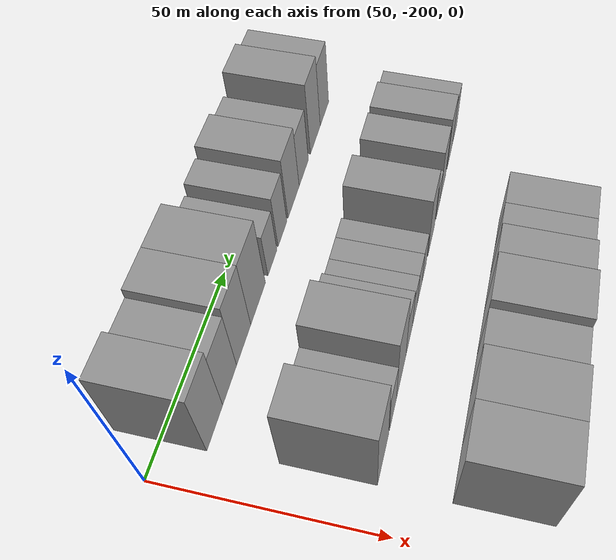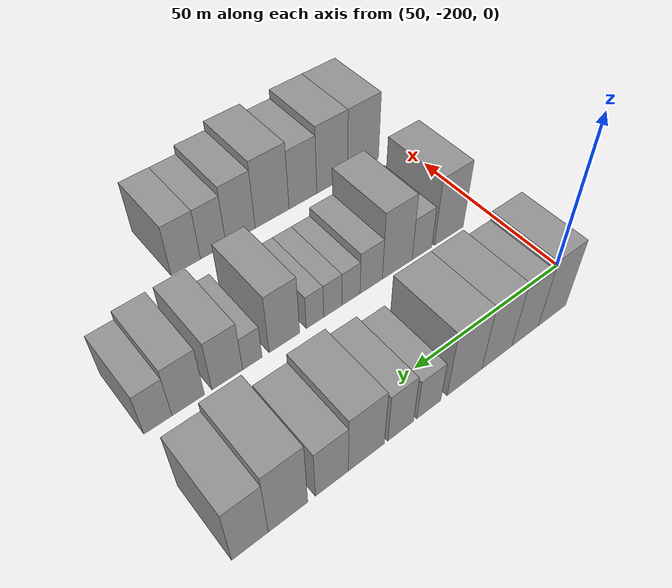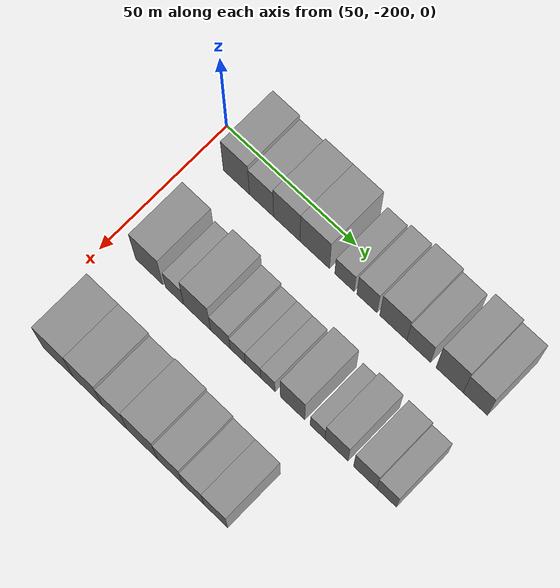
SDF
<sdf version="1.6">
 <world name="default">
  <model name="building_18">
   <static>1</static>
   <pose>50.0000 -186.4516 0 0.000000 0.000000 0.000000</pose>
   <link name="link">
    <pose>0 0 12.00 0 0 0</pose>
    <collision name="collision"><geometry><box><size>20.0000 10.1040 24.0000</size></box></geometry></collision>
    <visual name="visual">
     <cast_shadows>0</cast_shadows>
     <geometry><box><size>20.0000 10.1040 24.0000</size></box></geometry>
     <material>
      <script>
       <uri>model://grey_wall/materials/scripts</uri>
       <uri>model://grey_wall/materials/textures</uri>
       <name>vrc/grey_wall</name>
      </script>
     </material>
    </visual>
   </link>
  </model>
  <model name="building_19">
   <static>1</static>
   <pose>50.0000 -176.7183 0 0.000000 0.000000 0.000000</pose>
   <link name="link">
    <pose>0 0 10.50 0 0 0</pose>
    <collision name="collision"><geometry><box><size>20.0000 9.3626 21.0000</size></box></geometry></collision>
    <visual name="visual">
     <cast_shadows>0</cast_shadows>
     <geometry><box><size>20.0000 9.3626 21.0000</size></box></geometry>
     <material>
      <script>
       <uri>model://grey_wall/materials/scripts</uri>
       <uri>model://grey_wall/materials/textures</uri>
       <name>vrc/grey_wall</name>
      </script>
     </material>
    </visual>
   </link>
  </model>
  <model name="building_20">
   <static>1</static>
   <pose>50.0000 -166.9501 0 0.000000 0.000000 0.000000</pose>
   <link name="link">
    <pose>0 0 12.00 0 0 0</pose>
    <collision name="collision"><geometry><box><size>20.0000 10.1739 24.0000</size></box></geometry></collision>
    <visual name="visual">
     <cast_shadows>0</cast_shadows>
     <geometry><box><size>20.0000 10.1739 24.0000</size></box></geometry>
     <material>
      <script>
       <uri>model://grey_wall/materials/scripts</uri>
       <uri>model://grey_wall/materials/textures</uri>
       <name>vrc/grey_wall</name>
      </script>
     </material>
    </visual>
   </link>
  </model>
  <model name="building_21">
   <static>1</static>
   <pose>50.0000 -156.2615 0 0.000000 0.000000 0.000000</pose>
   <link name="link">
    <pose>0 0 12.00 0 0 0</pose>
    <collision name="collision"><geometry><box><size>20.0000 11.2033 24.0000</size></box></geometry></collision>
    <visual name="visual">
     <cast_shadows>0</cast_shadows>
     <geometry><box><size>20.0000 11.2033 24.0000</size></box></geometry>
     <material>
      <script>
       <uri>model://grey_wall/materials/scripts</uri>
       <uri>model://grey_wall/materials/textures</uri>
       <name>vrc/grey_wall</name>
      </script>
     </material>
    </visual>
   </link>
  </model>
  <model name="building_22">
   <static>1</static>
   <pose>50.0000 -144.9928 0 0.000000 0.000000 0.000000</pose>
   <link name="link">
    <pose>0 0 7.50 0 0 0</pose>
    <collision name="collision"><geometry><box><size>20.0000 7.3341 15.0000</size></box></geometry></collision>
    <visual name="visual">
     <cast_shadows>0</cast_shadows>
     <geometry><box><size>20.0000 7.3341 15.0000</size></box></geometry>
     <material>
      <script>
       <uri>model://grey_wall/materials/scripts</uri>
       <uri>model://grey_wall/materials/textures</uri>
       <name>vrc/grey_wall</name>
      </script>
     </material>
    </visual>
   </link>
  </model>
  <model name="building_23">
   <static>1</static>
   <pose>50.0000 -136.5323 0 0.000000 0.000000 0.000000</pose>
   <link name="link">
    <pose>0 0 9.00 0 0 0</pose>
    <collision name="collision"><geometry><box><size>20.0000 7.5868 18.0000</size></box></geometry></collision>
    <visual name="visual">
     <cast_shadows>0</cast_shadows>
     <geometry><box><size>20.0000 7.5868 18.0000</size></box></geometry>
     <material>
      <script>
       <uri>model://grey_wall/materials/scripts</uri>
       <uri>model://grey_wall/materials/textures</uri>
       <name>vrc/grey_wall</name>
      </script>
     </material>
    </visual>
   </link>
  </model>
  <model name="building_24">
   <static>1</static>
   <pose>50.0000 -126.6747 0 0.000000 0.000000 0.000000</pose>
   <link name="link">
    <pose>0 0 10.50 0 0 0</pose>
    <collision name="collision"><geometry><box><size>20.0000 10.1284 21.0000</size></box></geometry></collision>
    <visual name="visual">
     <cast_shadows>0</cast_shadows>
     <geometry><box><size>20.0000 10.1284 21.0000</size></box></geometry>
     <material>
      <script>
       <uri>model://grey_wall/materials/scripts</uri>
       <uri>model://grey_wall/materials/textures</uri>
       <name>vrc/grey_wall</name>
      </script>
     </material>
    </visual>
   </link>
  </model>
  <model name="building_25">
   <static>1</static>
   <pose>50.0000 -117.2045 0 0.000000 0.000000 0.000000</pose>
   <link name="link">
    <pose>0 0 9.00 0 0 0</pose>
    <collision name="collision"><geometry><box><size>20.0000 8.8121 18.0000</size></box></geometry></collision>
    <visual name="visual">
     <cast_shadows>0</cast_shadows>
     <geometry><box><size>20.0000 8.8121 18.0000</size></box></geometry>
     <material>
      <script>
       <uri>model://grey_wall/materials/scripts</uri>
       <uri>model://grey_wall/materials/textures</uri>
       <name>vrc/grey_wall</name>
      </script>
     </material>
    </visual>
   </link>
  </model>
  <model name="building_26">
   <static>1</static>
   <pose>50.0000 -105.8150 0 0.000000 0.000000 0.000000</pose>
   <link name="link">
    <pose>0 0 12.00 0 0 0</pose>
    <collision name="collision"><geometry><box><size>20.0000 9.9670 24.0000</size></box></geometry></collision>
    <visual name="visual">
     <cast_shadows>0</cast_shadows>
     <geometry><box><size>20.0000 9.9670 24.0000</size></box></geometry>
     <material>
      <script>
       <uri>model://grey_wall/materials/scripts</uri>
       <uri>model://grey_wall/materials/textures</uri>
       <name>vrc/grey_wall</name>
      </script>
     </material>
    </visual>
   </link>
  </model>
  <model name="building_27">
   <static>1</static>
   <pose>50.0000 -96.3800 0 0.000000 0.000000 0.000000</pose>
   <link name="link">
    <pose>0 0 10.50 0 0 0</pose>
    <collision name="collision"><geometry><box><size>20.0000 8.9029 21.0000</size></box></geometry></collision>
    <visual name="visual">
     <cast_shadows>0</cast_shadows>
     <geometry><box><size>20.0000 8.9029 21.0000</size></box></geometry>
     <material>
      <script>
       <uri>model://grey_wall/materials/scripts</uri>
       <uri>model://grey_wall/materials/textures</uri>
       <name>vrc/grey_wall</name>
      </script>
     </material>
    </visual>
   </link>
  </model>
  <model name="building_98">
   <static>1</static>
   <pose>85.0000 -185.4646 0 0.000000 0.000000 0.000000</pose>
   <link name="link">
    <pose>0 0 12.00 0 0 0</pose>
    <collision name="collision"><geometry><box><size>20.0000 10.6071 24.0000</size></box></geometry></collision>
    <visual name="visual">
     <cast_shadows>0</cast_shadows>
     <geometry><box><size>20.0000 10.6071 24.0000</size></box></geometry>
     <material>
      <script>
       <uri>model://grey_wall/materials/scripts</uri>
       <uri>model://grey_wall/materials/textures</uri>
       <name>vrc/grey_wall</name>
      </script>
     </material>
    </visual>
   </link>
  </model>
  <model name="building_99">
   <static>1</static>
   <pose>85.0000 -175.6319 0 0.000000 0.000000 0.000000</pose>
   <link name="link">
    <pose>0 0 7.50 0 0 0</pose>
    <collision name="collision"><geometry><box><size>20.0000 7.0582 15.0000</size></box></geometry></collision>
    <visual name="visual">
     <cast_shadows>0</cast_shadows>
     <geometry><box><size>20.0000 7.0582 15.0000</size></box></geometry>
     <material>
      <script>
       <uri>model://grey_wall/materials/scripts</uri>
       <uri>model://grey_wall/materials/textures</uri>
       <name>vrc/grey_wall</name>
      </script>
     </material>
    </visual>
   </link>
  </model>
  <model name="building_100">
   <static>1</static>
   <pose>85.0000 -166.9667 0 0.000000 0.000000 0.000000</pose>
   <link name="link">
    <pose>0 0 12.00 0 0 0</pose>
    <collision name="collision"><geometry><box><size>20.0000 10.2723 24.0000</size></box></geometry></collision>
    <visual name="visual">
     <cast_shadows>0</cast_shadows>
     <geometry><box><size>20.0000 10.2723 24.0000</size></box></geometry>
     <material>
      <script>
       <uri>model://grey_wall/materials/scripts</uri>
       <uri>model://grey_wall/materials/textures</uri>
       <name>vrc/grey_wall</name>
      </script>
     </material>
    </visual>
   </link>
  </model>
  <model name="building_101">
   <static>1</static>
   <pose>85.0000 -158.1169 0 0.000000 0.000000 0.000000</pose>
   <link name="link">
    <pose>0 0 7.50 0 0 0</pose>
    <collision name="collision"><geometry><box><size>20.0000 7.4273 15.0000</size></box></geometry></collision>
    <visual name="visual">
     <cast_shadows>0</cast_shadows>
     <geometry><box><size>20.0000 7.4273 15.0000</size></box></geometry>
     <material>
      <script>
       <uri>model://grey_wall/materials/scripts</uri>
       <uri>model://grey_wall/materials/textures</uri>
       <name>vrc/grey_wall</name>
      </script>
     </material>
    </visual>
   </link>
  </model>
  <model name="building_102">
   <static>1</static>
   <pose>85.0000 -151.5173 0 0.000000 0.000000 0.000000</pose>
   <link name="link">
    <pose>0 0 6.00 0 0 0</pose>
    <collision name="collision"><geometry><box><size>20.0000 5.7720 12.0000</size></box></geometry></collision>
    <visual name="visual">
     <cast_shadows>0</cast_shadows>
     <geometry><box><size>20.0000 5.7720 12.0000</size></box></geometry>
     <material>
      <script>
       <uri>model://grey_wall/materials/scripts</uri>
       <uri>model://grey_wall/materials/textures</uri>
       <name>vrc/grey_wall</name>
      </script>
     </material>
    </visual>
   </link>
  </model>
  <model name="building_103">
   <static>1</static>
   <pose>85.0000 -145.7244 0 0.000000 0.000000 0.000000</pose>
   <link name="link">
    <pose>0 0 6.00 0 0 0</pose>
    <collision name="collision"><geometry><box><size>20.0000 5.8138 12.0000</size></box></geometry></collision>
    <visual name="visual">
     <cast_shadows>0</cast_shadows>
     <geometry><box><size>20.0000 5.8138 12.0000</size></box></geometry>
     <material>
      <script>
       <uri>model://grey_wall/materials/scripts</uri>
       <uri>model://grey_wall/materials/textures</uri>
       <name>vrc/grey_wall</name>
      </script>
     </material>
    </visual>
   </link>
  </model>
  <model name="building_104">
   <static>1</static>
   <pose>85.0000 -140.1190 0 0.000000 0.000000 0.000000</pose>
   <link name="link">
    <pose>0 0 6.00 0 0 0</pose>
    <collision name="collision"><geometry><box><size>20.0000 5.3971 12.0000</size></box></geometry></collision>
    <visual name="visual">
     <cast_shadows>0</cast_shadows>
     <geometry><box><size>20.0000 5.3971 12.0000</size></box></geometry>
     <material>
      <script>
       <uri>model://grey_wall/materials/scripts</uri>
       <uri>model://grey_wall/materials/textures</uri>
       <name>vrc/grey_wall</name>
      </script>
     </material>
    </visual>
   </link>
  </model>
  <model name="building_105">
   <static>1</static>
   <pose>85.0000 -130.8782 0 0.000000 0.000000 0.000000</pose>
   <link name="link">
    <pose>0 0 10.50 0 0 0</pose>
    <collision name="collision"><geometry><box><size>20.0000 9.0844 21.0000</size></box></geometry></collision>
    <visual name="visual">
     <cast_shadows>0</cast_shadows>
     <geometry><box><size>20.0000 9.0844 21.0000</size></box></geometry>
     <material>
      <script>
       <uri>model://grey_wall/materials/scripts</uri>
       <uri>model://grey_wall/materials/textures</uri>
       <name>vrc/grey_wall</name>
      </script>
     </material>
    </visual>
   </link>
  </model>
  <model name="building_106">
   <static>1</static>
   <pose>85.0000 -121.5744 0 0.000000 0.000000 0.000000</pose>
   <link name="link">
    <pose>0 0 6.00 0 0 0</pose>
    <collision name="collision"><geometry><box><size>20.0000 5.5231 12.0000</size></box></geometry></collision>
    <visual name="visual">
     <cast_shadows>0</cast_shadows>
     <geometry><box><size>20.0000 5.5231 12.0000</size></box></geometry>
     <material>
      <script>
       <uri>model://grey_wall/materials/scripts</uri>
       <uri>model://grey_wall/materials/textures</uri>
       <name>vrc/grey_wall</name>
      </script>
     </material>
    </visual>
   </link>
  </model>
  <model name="building_107">
   <static>1</static>
   <pose>85.0000 -114.5613 0 0.000000 0.000000 0.000000</pose>
   <link name="link">
    <pose>0 0 9.00 0 0 0</pose>
    <collision name="collision"><geometry><box><size>20.0000 8.5031 18.0000</size></box></geometry></collision>
    <visual name="visual">
     <cast_shadows>0</cast_shadows>
     <geometry><box><size>20.0000 8.5031 18.0000</size></box></geometry>
     <material>
      <script>
       <uri>model://grey_wall/materials/scripts</uri>
       <uri>model://grey_wall/materials/textures</uri>
       <name>vrc/grey_wall</name>
      </script>
     </material>
    </visual>
   </link>
  </model>
  <model name="building_108">
   <static>1</static>
   <pose>85.0000 -104.0342 0 0.000000 0.000000 0.000000</pose>
   <link name="link">
    <pose>0 0 9.00 0 0 0</pose>
    <collision name="collision"><geometry><box><size>20.0000 8.5511 18.0000</size></box></geometry></collision>
    <visual name="visual">
     <cast_shadows>0</cast_shadows>
     <geometry><box><size>20.0000 8.5511 18.0000</size></box></geometry>
     <material>
      <script>
       <uri>model://grey_wall/materials/scripts</uri>
       <uri>model://grey_wall/materials/textures</uri>
       <name>vrc/grey_wall</name>
      </script>
     </material>
    </visual>
   </link>
  </model>
  <model name="building_109">
   <static>1</static>
   <pose>85.0000 -96.1743 0 0.000000 0.000000 0.000000</pose>
   <link name="link">
    <pose>0 0 7.50 0 0 0</pose>
    <collision name="collision"><geometry><box><size>20.0000 7.1687 15.0000</size></box></geometry></collision>
    <visual name="visual">
     <cast_shadows>0</cast_shadows>
     <geometry><box><size>20.0000 7.1687 15.0000</size></box></geometry>
     <material>
      <script>
       <uri>model://grey_wall/materials/scripts</uri>
       <uri>model://grey_wall/materials/textures</uri>
       <name>vrc/grey_wall</name>
      </script>
     </material>
    </visual>
   </link>
  </model>
  <model name="building_182">
   <static>1</static>
   <pose>120.0000 -185.1397 0 0.000000 0.000000 0.000000</pose>
   <link name="link">
    <pose>0 0 12.00 0 0 0</pose>
    <collision name="collision"><geometry><box><size>20.0000 11.6709 24.0000</size></box></geometry></collision>
    <visual name="visual">
     <cast_shadows>0</cast_shadows>
     <geometry><box><size>20.0000 11.6709 24.0000</size></box></geometry>
     <material>
      <script>
       <uri>model://grey_wall/materials/scripts</uri>
       <uri>model://grey_wall/materials/textures</uri>
       <name>vrc/grey_wall</name>
      </script>
     </material>
    </visual>
   </link>
  </model>
  <model name="building_183">
   <static>1</static>
   <pose>120.0000 -173.7274 0 0.000000 0.000000 0.000000</pose>
   <link name="link">
    <pose>0 0 12.00 0 0 0</pose>
    <collision name="collision"><geometry><box><size>20.0000 11.1538 24.0000</size></box></geometry></collision>
    <visual name="visual">
     <cast_shadows>0</cast_shadows>
     <geometry><box><size>20.0000 11.1538 24.0000</size></box></geometry>
     <material>
      <script>
       <uri>model://grey_wall/materials/scripts</uri>
       <uri>model://grey_wall/materials/textures</uri>
       <name>vrc/grey_wall</name>
      </script>
     </material>
    </visual>
   </link>
  </model>
  <model name="building_184">
   <static>1</static>
   <pose>120.0000 -163.3151 0 0.000000 0.000000 0.000000</pose>
   <link name="link">
    <pose>0 0 10.50 0 0 0</pose>
    <collision name="collision"><geometry><box><size>20.0000 9.6706 21.0000</size></box></geometry></collision>
    <visual name="visual">
     <cast_shadows>0</cast_shadows>
     <geometry><box><size>20.0000 9.6706 21.0000</size></box></geometry>
     <material>
      <script>
       <uri>model://grey_wall/materials/scripts</uri>
       <uri>model://grey_wall/materials/textures</uri>
       <name>vrc/grey_wall</name>
      </script>
     </material>
    </visual>
   </link>
  </model>
  <model name="building_185">
   <static>1</static>
   <pose>120.0000 -152.7936 0 0.000000 0.000000 0.000000</pose>
   <link name="link">
    <pose>0 0 12.00 0 0 0</pose>
    <collision name="collision"><geometry><box><size>20.0000 11.3725 24.0000</size></box></geometry></collision>
    <visual name="visual">
     <cast_shadows>0</cast_shadows>
     <geometry><box><size>20.0000 11.3725 24.0000</size></box></geometry>
     <material>
      <script>
       <uri>model://grey_wall/materials/scripts</uri>
       <uri>model://grey_wall/materials/textures</uri>
       <name>vrc/grey_wall</name>
      </script>
     </material>
    </visual>
   </link>
  </model>
  <model name="building_186">
   <static>1</static>
   <pose>120.0000 -142.3837 0 0.000000 0.000000 0.000000</pose>
   <link name="link">
    <pose>0 0 10.50 0 0 0</pose>
    <collision name="collision"><geometry><box><size>20.0000 9.4473 21.0000</size></box></geometry></collision>
    <visual name="visual">
     <cast_shadows>0</cast_shadows>
     <geometry><box><size>20.0000 9.4473 21.0000</size></box></geometry>
     <material>
      <script>
       <uri>model://grey_wall/materials/scripts</uri>
       <uri>model://grey_wall/materials/textures</uri>
       <name>vrc/grey_wall</name>
      </script>
     </material>
    </visual>
   </link>
  </model>
  <model name="building_187">
   <static>1</static>
   <pose>120.0000 -133.6986 0 0.000000 0.000000 0.000000</pose>
   <link name="link">
    <pose>0 0 9.00 0 0 0</pose>
    <collision name="collision"><geometry><box><size>20.0000 7.9229 18.0000</size></box></geometry></collision>
    <visual name="visual">
     <cast_shadows>0</cast_shadows>
     <geometry><box><size>20.0000 7.9229 18.0000</size></box></geometry>
     <material>
      <script>
       <uri>model://grey_wall/materials/scripts</uri>
       <uri>model://grey_wall/materials/textures</uri>
       <name>vrc/grey_wall</name>
      </script>
     </material>
    </visual>
   </link>
  </model>
  <model name="building_188">
   <static>1</static>
   <pose>120.0000 -125.3036 0 0.000000 0.000000 0.000000</pose>
   <link name="link">
    <pose>0 0 9.00 0 0 0</pose>
    <collision name="collision"><geometry><box><size>20.0000 8.8672 18.0000</size></box></geometry></collision>
    <visual name="visual">
     <cast_shadows>0</cast_shadows>
     <geometry><box><size>20.0000 8.8672 18.0000</size></box></geometry>
     <material>
      <script>
       <uri>model://grey_wall/materials/scripts</uri>
       <uri>model://grey_wall/materials/textures</uri>
       <name>vrc/grey_wall</name>
      </script>
     </material>
    </visual>
   </link>
  </model>
 </world>
</sdf>
